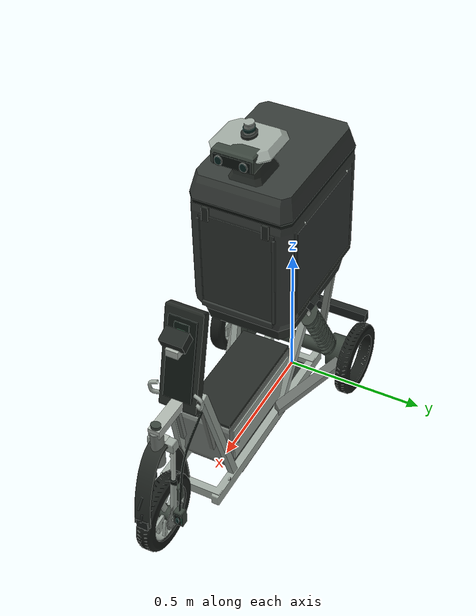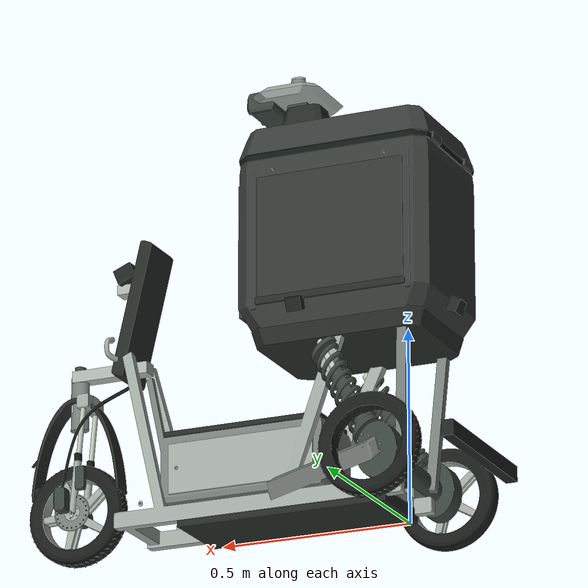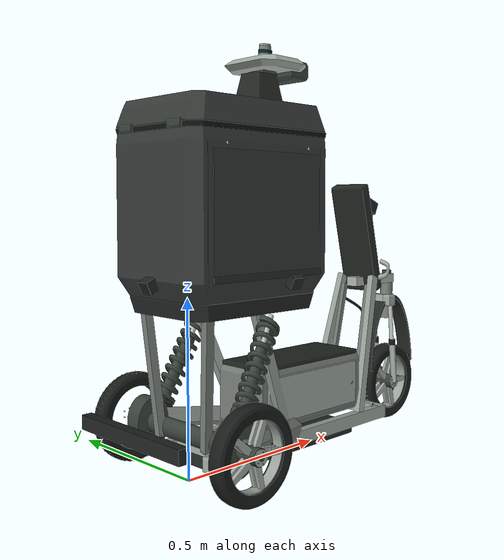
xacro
<robot xmlns:xacro="http://www.ros.org/wiki/xacro" name="bglx_prototype_proxy">
  <xacro:arg name="controllers_file" default="$(find etrike_description)/config/controllers.yaml" />
  <material name="concept_mount">
    <color rgba="0.22 0.26 0.23 1" />
  </material>
  <link name="base_link">
    <inertial>
      <origin rpy="0 0 0" xyz="0.342636986325 0 0.307739726" />
      <mass value="28.52258852258852" />
      <inertia ixx="2.2081942096410256" ixy="0.0" ixz="0.6020864067399267" iyy="3.159021024542125" iyz="0.0" izz="1.215067108175824" />
    </inertial>
    <collision name="lower_chassis">
      <origin rpy="0 0 0" xyz="0.36 0 0.0775" />
      <geometry>
        <box size="0.78 0.228 0.095" />
      </geometry>
    </collision>
    <collision name="battery">
      <origin rpy="0 0 0" xyz="0.4125 0 0.19" />
      <geometry>
        <box size="0.435 0.192 0.2" />
      </geometry>
    </collision>
    <collision name="cargo_shell">
      <origin rpy="0 0 0" xyz="0.135 0 0.737" />
      <geometry>
        <box size="0.525 0.366 0.58" />
      </geometry>
    </collision>
    <collision name="cargo_support">
      <origin rpy="0 0 0" xyz="0.0975 0 0.295" />
      <geometry>
        <box size="0.27 0.282 0.32" />
      </geometry>
    </collision>
    <collision name="display">
      <origin rpy="0 0 0" xyz="0.7275 0 0.64" />
      <geometry>
        <box size="0.126105200134 0.135 0.375982395822" />
      </geometry>
    </collision>
    <collision name="head_bearing_support">
      <origin rpy="0 0 0" xyz="0.81 0 0.495" />
      <geometry>
        <box size="0.21 0.039 0.03" />
      </geometry>
    </collision>
    <visual name="head_bearing_support">
      <origin rpy="0 0 0" xyz="0.81 0 0.495" />
      <geometry>
        <box size="0.21 0.039 0.03" />
      </geometry>
      <material name="bglx_aluminum">
        <color rgba="0.68 0.71 0.68 1.0" />
      </material>
    </visual>
    <collision name="sensor_mast">
      <origin rpy="0 0 0" xyz="0.315 0 1.098" />
      <geometry>
        <box size="0.1725 0.204 0.142" />
      </geometry>
    </collision>
    <collision name="terrain_camera_mount">
      <origin rpy="0 0 0" xyz="0.75375 0 0.71" />
      <geometry>
        <box size="0.07125 0.042 0.025" />
      </geometry>
    </collision>
    <visual name="terrain_camera_mount">
      <origin rpy="0 0 0" xyz="0.75375 0 0.71" />
      <geometry>
        <box size="0.07125 0.042 0.025" />
      </geometry>
      <material name="bglx_aluminum">
        <color rgba="0.68 0.71 0.68 1.0" />
      </material>
    </visual>
    <visual name="bglx_color_body_0">
      <origin rpy="0 0 0" xyz="0 0 -0.145" />
      <geometry>
        <mesh filename="package://etrike_description/meshes/concept_color/body_0.stl" scale="0.75 0.6 1" />
      </geometry>
      <material name="bglx_color_body_0">
        <color rgba="0.627451 0.666667 0.635294 1.0" />
      </material>
    </visual>
    <visual name="bglx_color_body_1">
      <origin rpy="0 0 0" xyz="0 0 -0.145" />
      <geometry>
        <mesh filename="package://etrike_description/meshes/concept_color/body_1.stl" scale="0.75 0.6 1" />
      </geometry>
      <material name="bglx_color_body_1">
        <color rgba="0.466667 0.494118 0.470588 1.0" />
      </material>
    </visual>
    <visual name="bglx_color_body_2">
      <origin rpy="0 0 0" xyz="0 0 -0.145" />
      <geometry>
        <mesh filename="package://etrike_description/meshes/concept_color/body_2.stl" scale="0.75 0.6 1" />
      </geometry>
      <material name="bglx_color_body_2">
        <color rgba="0.737255 0.772549 0.737255 1.0" />
      </material>
    </visual>
    <visual name="bglx_color_body_3">
      <origin rpy="0 0 0" xyz="0 0 -0.145" />
      <geometry>
        <mesh filename="package://etrike_description/meshes/concept_color/body_3.stl" scale="0.75 0.6 1" />
      </geometry>
      <material name="bglx_color_body_3">
        <color rgba="0.223529 0.262745 0.231373 1.0" />
      </material>
    </visual>
    <visual name="bglx_color_body_4">
      <origin rpy="0 0 0" xyz="0 0 -0.145" />
      <geometry>
        <mesh filename="package://etrike_description/meshes/concept_color/body_4.stl" scale="0.75 0.6 1" />
      </geometry>
      <material name="bglx_color_body_4">
        <color rgba="0.141176 0.160784 0.145098 1.0" />
      </material>
    </visual>
    <visual name="bglx_color_body_5">
      <origin rpy="0 0 0" xyz="0 0 -0.145" />
      <geometry>
        <mesh filename="package://etrike_description/meshes/concept_color/body_5.stl" scale="0.75 0.6 1" />
      </geometry>
      <material name="bglx_color_body_5">
        <color rgba="0.062745 0.090196 0.07451 1.0" />
      </material>
    </visual>
    <visual name="bglx_color_body_6">
      <origin rpy="0 0 0" xyz="0 0 -0.145" />
      <geometry>
        <mesh filename="package://etrike_description/meshes/concept_color/body_6.stl" scale="0.75 0.6 1" />
      </geometry>
      <material name="bglx_color_body_6">
        <color rgba="0.043137 0.094118 0.066667 1.0" />
      </material>
    </visual>
    <visual name="bglx_color_body_7">
      <origin rpy="0 0 0" xyz="0 0 -0.145" />
      <geometry>
        <mesh filename="package://etrike_description/meshes/concept_color/body_7.stl" scale="0.75 0.6 1" />
      </geometry>
      <material name="bglx_color_body_7">
        <color rgba="0.329412 0.72549 0.482353 1.0" />
      </material>
    </visual>
    <visual name="bglx_color_body_8">
      <origin rpy="0 0 0" xyz="0 0 -0.145" />
      <geometry>
        <mesh filename="package://etrike_description/meshes/concept_color/body_8.stl" scale="0.75 0.6 1" />
      </geometry>
      <material name="bglx_color_body_8">
        <color rgba="0.207843 0.227451 0.215686 1.0" />
      </material>
    </visual>
    <visual name="bglx_color_body_9">
      <origin rpy="0 0 0" xyz="0 0 -0.145" />
      <geometry>
        <mesh filename="package://etrike_description/meshes/concept_color/body_9.stl" scale="0.75 0.6 1" />
      </geometry>
      <material name="bglx_color_body_9">
        <color rgba="0.188235 0.207843 0.196078 1.0" />
      </material>
    </visual>
    <visual name="bglx_color_body_10">
      <origin rpy="0 0 0" xyz="0 0 -0.145" />
      <geometry>
        <mesh filename="package://etrike_description/meshes/concept_color/body_10.stl" scale="0.75 0.6 1" />
      </geometry>
      <material name="bglx_color_body_10">
        <color rgba="0.031373 0.14902 0.133333 1.0" />
      </material>
    </visual>
    <visual name="prototype_rear_bumper">
      <origin xyz="-0.185 0 0.16" rpy="0 0 0" />
      <geometry>
        <box size="0.03 0.42 0.04" />
      </geometry>
      <material name="prototype_bumper">
        <color rgba="0.12 0.14 0.13 1" />
      </material>
    </visual>
    <collision name="prototype_rear_bumper">
      <origin xyz="-0.185 0 0.16" rpy="0 0 0" />
      <geometry>
        <box size="0.03 0.42 0.04" />
      </geometry>
    </collision>
  </link>
  <link name="base_footprint" />
  <joint name="base_footprint_joint" type="fixed">
    <parent link="base_link" />
    <child link="base_footprint" />
    <origin rpy="0 0 0" xyz="0 0 0" />
  </joint>
  <link name="caster_mount">
    <inertial>
      <origin rpy="0 0 0" xyz="-0.01 0 -0.19" />
      <mass value="2.93040293040293" />
      <inertia ixx="0.04358776576958395" ixy="0.0" ixz="0.0" iyy="0.04237362637362638" iyz="0.0" izz="0.0029333091151272995" />
    </inertial>
    <collision name="fork_-1">
      <origin rpy="0 0 0" xyz="-0.01 -0.0359272727273 -0.215" />
      <geometry>
        <box size="0.036521472162 0.0222181818182 0.303654915607" />
      </geometry>
    </collision>
    <collision name="fork_1">
      <origin rpy="0 0 0" xyz="-0.01 0.0359272727273 -0.215" />
      <geometry>
        <box size="0.036521472162 0.0222181818182 0.303654915607" />
      </geometry>
    </collision>
    <collision name="fork_crown">
      <origin rpy="0 0 0" xyz="-0.028 0 -0.075" />
      <geometry>
        <box size="0.036 0.0945454545455 0.04" />
      </geometry>
    </collision>
    <collision name="offset_fork_crown">
      <origin rpy="0 0 0" xyz="-0.014 0 -0.075" />
      <geometry>
        <box size="0.06 0.0330909090909 0.038" />
      </geometry>
    </collision>
    <visual name="offset_fork_crown">
      <origin rpy="0 0 0" xyz="-0.014 0 -0.075" />
      <geometry>
        <box size="0.06 0.0330909090909 0.038" />
      </geometry>
      <material name="bglx_aluminum">
        <color rgba="0.68 0.71 0.68 1.0" />
      </material>
    </visual>
    <collision name="mudguard_0">
      <origin rpy="0 0 0" xyz="0.1125601746 0 -0.2610106046" />
      <geometry>
        <box size="0.0200071145597 0.0567272727273 0.100284248032" />
      </geometry>
    </collision>
    <collision name="mudguard_1">
      <origin rpy="0 0 0" xyz="0.09465673788 0 -0.1806073827" />
      <geometry>
        <box size="0.0298798984836 0.0567272727273 0.0895036939888" />
      </geometry>
    </collision>
    <collision name="mudguard_2">
      <origin rpy="0 0 0" xyz="0.06784714376 0 -0.117553477" />
      <geometry>
        <box size="0.0369413127682 0.0567272727273 0.0703018272441" />
      </geometry>
    </collision>
    <collision name="mudguard_3">
      <origin rpy="0 0 0" xyz="0.034653880028 0 -0.07778156615" />
      <geometry>
        <box size="0.0405269560267 0.0567272727273 0.0444853321629" />
      </geometry>
    </collision>
    <collision name="mudguard_4">
      <origin rpy="0 0 0" xyz="-0.0017999325008 0 -0.06503374937" />
      <geometry>
        <box size="0.0404914514853 0.0567272727273 0.0175131432219" />
      </geometry>
    </collision>
    <collision name="mudguard_5">
      <origin rpy="0 0 0" xyz="-0.038084391188 0 -0.08050945591" />
      <geometry>
        <box size="0.0403425608002 0.0567272727273 0.0472271916016" />
      </geometry>
    </collision>
    <collision name="mudguard_6">
      <origin rpy="0 0 0" xyz="-0.07078552776 0 -0.1227525921" />
      <geometry>
        <box size="0.0363978790767 0.0567272727273 0.0724976809436" />
      </geometry>
    </collision>
    <collision name="mudguard_7">
      <origin rpy="0 0 0" xyz="-0.09682652508 0 -0.1877885437" />
      <geometry>
        <box size="0.0290285574576 0.0567272727273 0.0909469362795" />
      </geometry>
    </collision>
    <collision name="mudguard_8">
      <origin rpy="0 0 0" xyz="-0.11375721188 0 -0.2694981432" />
      <geometry>
        <box size="0.0189279680216 0.0567272727273 0.100839085696" />
      </geometry>
    </collision>
    <collision name="axle_sensor">
      <origin rpy="0 0 0" xyz="0.014 0.0685454545455 -0.34" />
      <geometry>
        <box size="0.032 0.0354545454545 0.065" />
      </geometry>
    </collision>
    <visual name="bglx_color_steering_0">
      <origin rpy="0 0 0" xyz="-0.028 0 0" />
      <geometry>
        <mesh filename="package://etrike_description/meshes/concept_color/steering_0.stl" scale="0.4 0.472727272727 1" />
      </geometry>
      <material name="bglx_color_steering_0">
        <color rgba="0.627451 0.666667 0.635294 1.0" />
      </material>
    </visual>
    <visual name="bglx_color_steering_1">
      <origin rpy="0 0 0" xyz="-0.028 0 0" />
      <geometry>
        <mesh filename="package://etrike_description/meshes/concept_color/steering_1.stl" scale="0.4 0.472727272727 1" />
      </geometry>
      <material name="bglx_color_steering_1">
        <color rgba="0.223529 0.262745 0.231373 1.0" />
      </material>
    </visual>
    <visual name="bglx_color_steering_2">
      <origin rpy="0 0 0" xyz="-0.028 0 0" />
      <geometry>
        <mesh filename="package://etrike_description/meshes/concept_color/steering_2.stl" scale="0.4 0.472727272727 1" />
      </geometry>
      <material name="bglx_color_steering_2">
        <color rgba="0.737255 0.772549 0.737255 1.0" />
      </material>
    </visual>
    <visual name="bglx_color_steering_3">
      <origin rpy="0 0 0" xyz="-0.028 0 0" />
      <geometry>
        <mesh filename="package://etrike_description/meshes/concept_color/steering_3.stl" scale="0.4 0.472727272727 1" />
      </geometry>
      <material name="bglx_color_steering_3">
        <color rgba="0.062745 0.090196 0.07451 1.0" />
      </material>
    </visual>
    <visual name="bglx_color_steering_4">
      <origin rpy="0 0 0" xyz="-0.028 0 0" />
      <geometry>
        <mesh filename="package://etrike_description/meshes/concept_color/steering_4.stl" scale="0.4 0.472727272727 1" />
      </geometry>
      <material name="bglx_color_steering_4">
        <color rgba="0.141176 0.160784 0.145098 1.0" />
      </material>
    </visual>
    <visual name="bglx_color_steering_5">
      <origin rpy="0 0 0" xyz="-0.028 0 0" />
      <geometry>
        <mesh filename="package://etrike_description/meshes/concept_color/steering_5.stl" scale="0.4 0.472727272727 1" />
      </geometry>
      <material name="bglx_color_steering_5">
        <color rgba="0.031373 0.14902 0.133333 1.0" />
      </material>
    </visual>
    <visual name="bglx_color_steering_6">
      <origin rpy="0 0 0" xyz="-0.028 0 0" />
      <geometry>
        <mesh filename="package://etrike_description/meshes/concept_color/steering_6.stl" scale="0.4 0.472727272727 1" />
      </geometry>
      <material name="bglx_color_steering_6">
        <color rgba="0.203922 0.47451 0.352941 1.0" />
      </material>
    </visual>
    <visual name="clean_front_bracket_0">
      <origin xyz="0.118 0 -0.205" rpy="0 2.356194490192345 0" />
      <geometry>
        <cylinder radius="0.0036" length="0.03959797974644666" />
      </geometry>
      <material name="clean_sensor_bracket">
        <color rgba="0.12 0.14 0.13 1" />
      </material>
    </visual>
    <collision name="clean_front_bracket_0">
      <origin xyz="0.118 0 -0.205" rpy="0 2.356194490192345 0" />
      <geometry>
        <cylinder radius="0.0036" length="0.03959797974644666" />
      </geometry>
    </collision>
    <visual name="clean_front_bracket_1">
      <origin xyz="0.1214 0 -0.27" rpy="0 2.790147859586242 0" />
      <geometry>
        <cylinder radius="0.0036" length="0.02556247249387273" />
      </geometry>
      <material name="clean_sensor_bracket">
        <color rgba="0.12 0.14 0.13 1" />
      </material>
    </visual>
    <collision name="clean_front_bracket_1">
      <origin xyz="0.1214 0 -0.27" rpy="0 2.790147859586242 0" />
      <geometry>
        <cylinder radius="0.0036" length="0.02556247249387273" />
      </geometry>
    </collision>
  </link>
  <joint name="steering_joint" type="revolute">
    <parent link="base_link" />
    <child link="caster_mount" />
    <origin rpy="0 0 0" xyz="0.9 0 0.495" />
    <axis xyz="0 0 1" />
    <limit effort="80" lower="-1.0471975511965976" upper="1.0471975511965976" velocity="1.047" />
    <dynamics damping=".4" friction=".02" />
  </joint>
  <link name="front_wheel">
    <inertial>
      <origin rpy="0 0 0" xyz="0 0 0" />
      <mass value="1.9536019536019535" />
      <inertia ixx="0.008777856486947393" ixy="0.0" ixz="0.0" iyy="0.016507936507936506" iyz="0.0" izz="0.008777856486947393" />
    </inertial>
    <collision name="front_wheel_contact">
      <origin rpy="1.570796327 0 0" xyz="0 0 0" />
      <geometry>
        <cylinder length="0.08036363636363637" radius="0.13" />
      </geometry>
    </collision>
    <visual name="bglx_color_front_wheel_0">
      <origin rpy="0 0 0" xyz="0 0 0" />
      <geometry>
        <mesh filename="package://etrike_description/meshes/concept_color/front_wheel_0.stl" scale="0.472727272727 0.472727272727 0.472727272727" />
      </geometry>
      <material name="bglx_color_front_wheel_0">
        <color rgba="0.094118 0.109804 0.098039 1.0" />
      </material>
    </visual>
    <visual name="bglx_color_front_wheel_1">
      <origin rpy="0 0 0" xyz="0 0 0" />
      <geometry>
        <mesh filename="package://etrike_description/meshes/concept_color/front_wheel_1.stl" scale="0.472727272727 0.472727272727 0.472727272727" />
      </geometry>
      <material name="bglx_color_front_wheel_1">
        <color rgba="0.627451 0.666667 0.635294 1.0" />
      </material>
    </visual>
    <visual name="bglx_color_front_wheel_2">
      <origin rpy="0 0 0" xyz="0 0 0" />
      <geometry>
        <mesh filename="package://etrike_description/meshes/concept_color/front_wheel_2.stl" scale="0.472727272727 0.472727272727 0.472727272727" />
      </geometry>
      <material name="bglx_color_front_wheel_2">
        <color rgba="0.223529 0.262745 0.231373 1.0" />
      </material>
    </visual>
    <visual name="bglx_color_front_wheel_3">
      <origin rpy="0 0 0" xyz="0 0 0" />
      <geometry>
        <mesh filename="package://etrike_description/meshes/concept_color/front_wheel_3.stl" scale="0.472727272727 0.472727272727 0.472727272727" />
      </geometry>
      <material name="bglx_color_front_wheel_3">
        <color rgba="0.737255 0.772549 0.737255 1.0" />
      </material>
    </visual>
    <visual name="bglx_color_front_wheel_4">
      <origin rpy="0 0 0" xyz="0 0 0" />
      <geometry>
        <mesh filename="package://etrike_description/meshes/concept_color/front_wheel_4.stl" scale="0.472727272727 0.472727272727 0.472727272727" />
      </geometry>
      <material name="bglx_color_front_wheel_4">
        <color rgba="0.062745 0.082353 0.066667 1.0" />
      </material>
    </visual>
    <visual name="bglx_color_front_wheel_5">
      <origin rpy="0 0 0" xyz="0 0 0" />
      <geometry>
        <mesh filename="package://etrike_description/meshes/concept_color/front_wheel_5.stl" scale="0.472727272727 0.472727272727 0.472727272727" />
      </geometry>
      <material name="bglx_color_front_wheel_5">
        <color rgba="0.466667 0.494118 0.470588 1.0" />
      </material>
    </visual>
    <visual name="bglx_color_front_wheel_6">
      <origin rpy="0 0 0" xyz="0 0 0" />
      <geometry>
        <mesh filename="package://etrike_description/meshes/concept_color/front_wheel_6.stl" scale="0.472727272727 0.472727272727 0.472727272727" />
      </geometry>
      <material name="bglx_color_front_wheel_6">
        <color rgba="0.062745 0.090196 0.07451 1.0" />
      </material>
    </visual>
  </link>
  <joint name="front_wheel_joint" type="continuous">
    <parent link="caster_mount" />
    <child link="front_wheel" />
    <origin rpy="0 0 0" xyz="0 0 -0.365" />
    <axis xyz="0 1 0" />
    <limit effort="80" velocity="25" />
    <dynamics damping=".02" friction=".005" />
  </joint>
  <gazebo reference="front_wheel">
    <mu1>0.85</mu1>
    <mu2>0.85</mu2>
    <kp>1000000</kp>
    <kd>100</kd>
    <minDepth>0.001</minDepth>
    <maxVel>0.1</maxVel>
  </gazebo>
  <link name="rear_left_wheel">
    <inertial>
      <origin rpy="0 0 0" xyz="0 0 0" />
      <mass value="3.1257631257631258" />
      <inertia ixx="0.013848112291748652" ixy="0.0" ixz="0.0" iyy="0.02641269841269841" iyz="0.0" izz="0.013848112291748652" />
    </inertial>
    <collision name="rear_left_wheel_contact">
      <origin rpy="1.570796327 0 0" xyz="0 0 0" />
      <geometry>
        <cylinder length="0.07327272727272727" radius="0.13" />
      </geometry>
    </collision>
    <visual name="bglx_color_rear_left_wheel_0">
      <origin rpy="0 0 0" xyz="0 0 0" />
      <geometry>
        <mesh filename="package://etrike_description/meshes/concept_color/rear_left_wheel_0.stl" scale="0.472727272727 0.472727272727 0.472727272727" />
      </geometry>
      <material name="bglx_color_rear_left_wheel_0">
        <color rgba="0.094118 0.109804 0.098039 1.0" />
      </material>
    </visual>
    <visual name="bglx_color_rear_left_wheel_1">
      <origin rpy="0 0 0" xyz="0 0 0" />
      <geometry>
        <mesh filename="package://etrike_description/meshes/concept_color/rear_left_wheel_1.stl" scale="0.472727272727 0.472727272727 0.472727272727" />
      </geometry>
      <material name="bglx_color_rear_left_wheel_1">
        <color rgba="0.627451 0.666667 0.635294 1.0" />
      </material>
    </visual>
    <visual name="bglx_color_rear_left_wheel_2">
      <origin rpy="0 0 0" xyz="0 0 0" />
      <geometry>
        <mesh filename="package://etrike_description/meshes/concept_color/rear_left_wheel_2.stl" scale="0.472727272727 0.472727272727 0.472727272727" />
      </geometry>
      <material name="bglx_color_rear_left_wheel_2">
        <color rgba="0.223529 0.262745 0.231373 1.0" />
      </material>
    </visual>
    <visual name="bglx_color_rear_left_wheel_3">
      <origin rpy="0 0 0" xyz="0 0 0" />
      <geometry>
        <mesh filename="package://etrike_description/meshes/concept_color/rear_left_wheel_3.stl" scale="0.472727272727 0.472727272727 0.472727272727" />
      </geometry>
      <material name="bglx_color_rear_left_wheel_3">
        <color rgba="0.737255 0.772549 0.737255 1.0" />
      </material>
    </visual>
    <visual name="bglx_color_rear_left_wheel_4">
      <origin rpy="0 0 0" xyz="0 0 0" />
      <geometry>
        <mesh filename="package://etrike_description/meshes/concept_color/rear_left_wheel_4.stl" scale="0.472727272727 0.472727272727 0.472727272727" />
      </geometry>
      <material name="bglx_color_rear_left_wheel_4">
        <color rgba="0.062745 0.082353 0.066667 1.0" />
      </material>
    </visual>
  </link>
  <joint name="rear_left_wheel_joint" type="continuous">
    <parent link="base_link" />
    <child link="rear_left_wheel" />
    <origin rpy="0 0 0" xyz="0 0.248363636364 0.13" />
    <axis xyz="0 1 0" />
    <limit effort="80" velocity="25" />
    <dynamics damping=".02" friction=".005" />
  </joint>
  <gazebo reference="rear_left_wheel">
    <mu1>0.85</mu1>
    <mu2>0.85</mu2>
    <kp>1000000</kp>
    <kd>100</kd>
    <minDepth>0.001</minDepth>
    <maxVel>0.1</maxVel>
  </gazebo>
  <link name="rear_right_wheel">
    <inertial>
      <origin rpy="0 0 0" xyz="0 0 0" />
      <mass value="3.1257631257631258" />
      <inertia ixx="0.013848112291748652" ixy="0.0" ixz="0.0" iyy="0.02641269841269841" iyz="0.0" izz="0.013848112291748652" />
    </inertial>
    <collision name="rear_right_wheel_contact">
      <origin rpy="1.570796327 0 0" xyz="0 0 0" />
      <geometry>
        <cylinder length="0.07327272727272727" radius="0.13" />
      </geometry>
    </collision>
    <visual name="bglx_color_rear_right_wheel_0">
      <origin rpy="0 0 0" xyz="0 0 0" />
      <geometry>
        <mesh filename="package://etrike_description/meshes/concept_color/rear_right_wheel_0.stl" scale="0.472727272727 0.472727272727 0.472727272727" />
      </geometry>
      <material name="bglx_color_rear_right_wheel_0">
        <color rgba="0.094118 0.109804 0.098039 1.0" />
      </material>
    </visual>
    <visual name="bglx_color_rear_right_wheel_1">
      <origin rpy="0 0 0" xyz="0 0 0" />
      <geometry>
        <mesh filename="package://etrike_description/meshes/concept_color/rear_right_wheel_1.stl" scale="0.472727272727 0.472727272727 0.472727272727" />
      </geometry>
      <material name="bglx_color_rear_right_wheel_1">
        <color rgba="0.627451 0.666667 0.635294 1.0" />
      </material>
    </visual>
    <visual name="bglx_color_rear_right_wheel_2">
      <origin rpy="0 0 0" xyz="0 0 0" />
      <geometry>
        <mesh filename="package://etrike_description/meshes/concept_color/rear_right_wheel_2.stl" scale="0.472727272727 0.472727272727 0.472727272727" />
      </geometry>
      <material name="bglx_color_rear_right_wheel_2">
        <color rgba="0.223529 0.262745 0.231373 1.0" />
      </material>
    </visual>
    <visual name="bglx_color_rear_right_wheel_3">
      <origin rpy="0 0 0" xyz="0 0 0" />
      <geometry>
        <mesh filename="package://etrike_description/meshes/concept_color/rear_right_wheel_3.stl" scale="0.472727272727 0.472727272727 0.472727272727" />
      </geometry>
      <material name="bglx_color_rear_right_wheel_3">
        <color rgba="0.737255 0.772549 0.737255 1.0" />
      </material>
    </visual>
    <visual name="bglx_color_rear_right_wheel_4">
      <origin rpy="0 0 0" xyz="0 0 0" />
      <geometry>
        <mesh filename="package://etrike_description/meshes/concept_color/rear_right_wheel_4.stl" scale="0.472727272727 0.472727272727 0.472727272727" />
      </geometry>
      <material name="bglx_color_rear_right_wheel_4">
        <color rgba="0.062745 0.082353 0.066667 1.0" />
      </material>
    </visual>
  </link>
  <joint name="rear_right_wheel_joint" type="continuous">
    <parent link="base_link" />
    <child link="rear_right_wheel" />
    <origin rpy="0 0 0" xyz="0 -0.248363636364 0.13" />
    <axis xyz="0 1 0" />
    <limit effort="80" velocity="25" />
    <dynamics damping=".02" friction=".005" />
  </joint>
  <gazebo reference="rear_right_wheel">
    <mu1>0.85</mu1>
    <mu2>0.85</mu2>
    <kp>1000000</kp>
    <kd>100</kd>
    <minDepth>0.001</minDepth>
    <maxVel>0.1</maxVel>
  </gazebo>
  <link name="lidar_sensor">
    <inertial>
      <origin rpy="0 0 0" xyz="0 0 0" />
      <mass value="0.04884004884004884" />
      <inertia ixx="9.768009768009769e-06" ixy="0.0" ixz="0.0" iyy="9.768009768009769e-06" iyz="0.0" izz="9.768009768009769e-06" />
    </inertial>
  </link>
  <joint name="lidar_sensor_joint" type="fixed">
    <parent link="base_link" />
    <child link="lidar_sensor" />
    <origin rpy="0 0 0" xyz="0.294 0 1.192" />
  </joint>
  <link name="camera_front_main">
    <inertial>
      <origin rpy="0 0 0" xyz="0 0 0" />
      <mass value="0.04884004884004884" />
      <inertia ixx="9.768009768009769e-06" ixy="0.0" ixz="0.0" iyy="9.768009768009769e-06" iyz="0.0" izz="9.768009768009769e-06" />
    </inertial>
  </link>
  <joint name="camera_front_main_joint" type="fixed">
    <parent link="base_link" />
    <child link="camera_front_main" />
    <origin rpy="0 0 0" xyz="0.41325 0.0408 1.138" />
  </joint>
  <link name="depth_camera">
    <inertial>
      <origin rpy="0 0 0" xyz="0 0 0" />
      <mass value="0.04884004884004884" />
      <inertia ixx="9.768009768009769e-06" ixy="0.0" ixz="0.0" iyy="9.768009768009769e-06" iyz="0.0" izz="9.768009768009769e-06" />
    </inertial>
    <collision name="depth_camera_housing">
      <origin rpy="0 0 0" xyz="-0.028 0 0" />
      <geometry>
        <box size="0.05 0.08 0.04" />
      </geometry>
    </collision>
    <visual name="depth_camera_housing">
      <origin rpy="0 0 0" xyz="-0.028 0 0" />
      <geometry>
        <box size="0.05 0.08 0.04" />
      </geometry>
      <material name="bglx_sensor">
        <color rgba="0.12 0.14 0.13 1.0" />
      </material>
    </visual>
  </link>
  <joint name="depth_camera_joint" type="fixed">
    <parent link="base_link" />
    <child link="depth_camera" />
    <origin rpy="0 0.4 0" xyz="0.7875 0 0.735" />
  </joint>
  <link name="front_lidar_link">
    <inertial>
      <origin rpy="0 0 0" xyz="0 0 0" />
      <mass value="0.04884004884004884" />
      <inertia ixx="9.768009768009769e-06" ixy="0.0" ixz="0.0" iyy="9.768009768009769e-06" iyz="0.0" izz="9.768009768009769e-06" />
    </inertial>
    <collision name="front_lidar_link_housing">
      <origin rpy="0 0 0" xyz="-0.018 0 0" />
      <geometry>
        <box size="0.03 0.04 0.035" />
      </geometry>
    </collision>
    <visual name="front_lidar_link_housing">
      <origin rpy="0 0 0" xyz="-0.018 0 0" />
      <geometry>
        <box size="0.03 0.04 0.035" />
      </geometry>
      <material name="bglx_sensor">
        <color rgba="0.12 0.14 0.13 1.0" />
      </material>
    </visual>
  </link>
  <joint name="front_lidar_link_joint" type="fixed">
    <parent link="caster_mount" />
    <child link="front_lidar_link" />
    <origin rpy="0 0 0" xyz="0.125 0 -0.3" />
  </joint>
  <link name="left_depth_link">
    <inertial>
      <origin rpy="0 0 0" xyz="0 0 0" />
      <mass value="0.04884004884004884" />
      <inertia ixx="9.768009768009769e-06" ixy="0.0" ixz="0.0" iyy="9.768009768009769e-06" iyz="0.0" izz="9.768009768009769e-06" />
    </inertial>
    <collision name="left_depth_link_housing">
      <origin rpy="0 0 0" xyz="-0.018 0 0" />
      <geometry>
        <box size="0.03 0.04 0.035" />
      </geometry>
    </collision>
    <visual name="left_depth_link_housing">
      <origin rpy="0 0 0" xyz="-0.018 0 0" />
      <geometry>
        <box size="0.03 0.04 0.035" />
      </geometry>
      <material name="bglx_sensor">
        <color rgba="0.12 0.14 0.13 1.0" />
      </material>
    </visual>
  </link>
  <joint name="left_depth_link_joint" type="fixed">
    <parent link="base_link" />
    <child link="left_depth_link" />
    <origin rpy="0 0.45 1.5707963267948966" xyz="0.225 0.1962 0.535" />
  </joint>
  <link name="right_depth_link">
    <inertial>
      <origin rpy="0 0 0" xyz="0 0 0" />
      <mass value="0.04884004884004884" />
      <inertia ixx="9.768009768009769e-06" ixy="0.0" ixz="0.0" iyy="9.768009768009769e-06" iyz="0.0" izz="9.768009768009769e-06" />
    </inertial>
    <collision name="right_depth_link_housing">
      <origin rpy="0 0 0" xyz="-0.018 0 0" />
      <geometry>
        <box size="0.03 0.04 0.035" />
      </geometry>
    </collision>
    <visual name="right_depth_link_housing">
      <origin rpy="0 0 0" xyz="-0.018 0 0" />
      <geometry>
        <box size="0.03 0.04 0.035" />
      </geometry>
      <material name="bglx_sensor">
        <color rgba="0.12 0.14 0.13 1.0" />
      </material>
    </visual>
  </link>
  <joint name="right_depth_link_joint" type="fixed">
    <parent link="base_link" />
    <child link="right_depth_link" />
    <origin rpy="0 0.45 -1.5707963267948966" xyz="0.225 -0.1962 0.535" />
  </joint>
  <link name="rear_depth_link">
    <inertial>
      <origin rpy="0 0 0" xyz="0 0 0" />
      <mass value="0.04884004884004884" />
      <inertia ixx="9.768009768009769e-06" ixy="0.0" ixz="0.0" iyy="9.768009768009769e-06" iyz="0.0" izz="9.768009768009769e-06" />
    </inertial>
    <collision name="rear_depth_link_housing">
      <origin rpy="0 0 0" xyz="-0.018 0 0" />
      <geometry>
        <box size="0.03 0.04 0.035" />
      </geometry>
    </collision>
    <visual name="rear_depth_link_housing">
      <origin rpy="0 0 0" xyz="-0.018 0 0" />
      <geometry>
        <box size="0.03 0.04 0.035" />
      </geometry>
      <material name="bglx_sensor">
        <color rgba="0.12 0.14 0.13 1.0" />
      </material>
    </visual>
  </link>
  <joint name="rear_depth_link_joint" type="fixed">
    <parent link="base_link" />
    <child link="rear_depth_link" />
    <origin rpy="0 0.45 3.141592653589793" xyz="-0.144 0 0.535" />
  </joint>
  <link name="depth_camera_optical" />
  <joint name="depth_camera_optical_joint" type="fixed">
    <parent link="depth_camera" />
    <child link="depth_camera_optical" />
    <origin rpy="-1.570796327 0 -1.570796327" xyz="0 0 0" />
  </joint>
  <link name="camera_front_main_optical" />
  <joint name="camera_front_main_optical_joint" type="fixed">
    <parent link="camera_front_main" />
    <child link="camera_front_main_optical" />
    <origin rpy="-1.570796327 0 -1.570796327" xyz="0 0 0" />
  </joint>
  <gazebo reference="lidar_sensor">
    <sensor name="lidar" type="ray">
      <always_on>true</always_on>
      <visualize>true</visualize>
      <update_rate>10</update_rate>
      <ray>
        <scan>
          <horizontal>
            <samples>720</samples>
            <resolution>1</resolution>
            <min_angle>-3.14159</min_angle>
            <max_angle>3.14159</max_angle>
          </horizontal>
        </scan>
        <range>
          <min>0.45</min>
          <max>30.0</max>
          <resolution>0.01</resolution>
        </range>
        <noise>
          <type>gaussian</type>
          <mean>0.0</mean>
          <stddev>0.01</stddev>
        </noise>
      </ray>
      <plugin filename="libgazebo_ros_ray_sensor.so" name="scan">
        <ros>
          <namespace>/etrike</namespace>
          <remapping>~/out:=scan</remapping>
        </ros>
        <output_type>sensor_msgs/LaserScan</output_type>
        <frame_name>lidar_sensor</frame_name>
      </plugin>
    </sensor>
  </gazebo>
  <gazebo reference="camera_front_main">
    <sensor name="camera_front" type="camera">
      <always_on>true</always_on>
      <visualize>false</visualize>
      <update_rate>30</update_rate>
      <camera name="front">
        <horizontal_fov>1.5708</horizontal_fov>
        <image>
          <width>800</width>
          <height>600</height>
          <format>R8G8B8</format>
        </image>
        <clip>
          <near>0.1</near>
          <far>100</far>
        </clip>
        <noise>
          <type>gaussian</type>
          <mean>0.0</mean>
          <stddev>0.005</stddev>
        </noise>
      </camera>
      <plugin filename="libgazebo_ros_camera.so" name="camera_front_controller">
        <ros>
          <namespace>/etrike</namespace>
          <remapping>image_raw:=/etrike/front/image_raw</remapping>
          <remapping>camera_info:=/etrike/front/camera_info</remapping>
        </ros>
        <camera_name>front</camera_name>
        <frame_name>camera_front_main_optical</frame_name>
      </plugin>
    </sensor>
  </gazebo>
  <gazebo reference="base_link">
    <sensor name="imu_sensor" type="imu">
      <always_on>true</always_on>
      <update_rate>100</update_rate>
      <visualize>false</visualize>
      <imu>
        <angular_velocity>
          <x>
            <noise type="gaussian">
              <mean>0.0</mean>
              <stddev>0.0002</stddev>
            </noise>
          </x>
          <y>
            <noise type="gaussian">
              <mean>0.0</mean>
              <stddev>0.0002</stddev>
            </noise>
          </y>
          <z>
            <noise type="gaussian">
              <mean>0.0</mean>
              <stddev>0.0002</stddev>
            </noise>
          </z>
        </angular_velocity>
        <linear_acceleration>
          <x>
            <noise type="gaussian">
              <mean>0.0</mean>
              <stddev>0.017</stddev>
            </noise>
          </x>
          <y>
            <noise type="gaussian">
              <mean>0.0</mean>
              <stddev>0.017</stddev>
            </noise>
          </y>
          <z>
            <noise type="gaussian">
              <mean>0.0</mean>
              <stddev>0.017</stddev>
            </noise>
          </z>
        </linear_acceleration>
      </imu>
      <plugin filename="libgazebo_ros_imu_sensor.so" name="imu_plugin">
        <ros>
          <namespace>/etrike</namespace>
          <remapping>~/out:=imu</remapping>
        </ros>
        <initial_orientation_as_reference>false</initial_orientation_as_reference>
        <frame_name>base_link</frame_name>
      </plugin>
    </sensor>
  </gazebo>
  <gazebo reference="depth_camera">
    <sensor name="front_depth_camera" type="depth">
      <always_on>true</always_on>
      <update_rate>15</update_rate>
      <visualize>true</visualize>
      <camera name="front_depth_camera">
        <horizontal_fov>1.047</horizontal_fov>
        <image>
          <width>640</width>
          <height>480</height>
          <format>R8G8B8</format>
        </image>
        <clip>
          <near>0.15</near>
          <far>6.0</far>
        </clip>
      </camera>
      <plugin name="front_depth_camera_controller" filename="libgazebo_ros_camera.so">
        <ros>
          <namespace>/etrike</namespace>
          <remapping>image_raw:=front_camera/image_raw</remapping>
          <remapping>camera_info:=front_camera/camera_info</remapping>
          <remapping>depth/image_raw:=front_camera/depth/image_raw</remapping>
          <remapping>depth/camera_info:=front_camera/depth/camera_info</remapping>
        </ros>
        <camera_name>front_camera</camera_name>
        <frame_name>depth_camera_optical</frame_name>
      </plugin>
    </sensor>
    <sensor name="front_depth" type="depth">
      <always_on>true</always_on>
      <update_rate>10</update_rate>
      <visualize>false</visualize>
      <camera name="front_terrain">
        <horizontal_fov>1.22173</horizontal_fov>
        <image>
          <width>320</width>
          <height>240</height>
          <format>R8G8B8</format>
        </image>
        <clip>
          <near>0.15</near>
          <far>4.0</far>
        </clip>
      </camera>
      <plugin filename="libgazebo_ros_camera.so" name="front_terrain_depth_controller">
        <ros>
          <namespace>/etrike</namespace>
          <remapping>image_raw:=/etrike/front_depth/image_raw</remapping>
          <remapping>camera_info:=/etrike/front_depth/camera_info</remapping>
          <remapping>depth/image_raw:=/etrike/front_depth/depth/image_raw</remapping>
          <remapping>depth/camera_info:=/etrike/front_depth/depth/camera_info</remapping>
          <remapping>points:=/etrike/front_depth/points</remapping>
        </ros>
        <camera_name>front_depth</camera_name>
        <frame_name>depth_camera_optical</frame_name>
        <pointCloudCutoff>0.15</pointCloudCutoff>
        <pointCloudCutoffMax>4.0</pointCloudCutoffMax>
      </plugin>
    </sensor>
    <sensor name="front_terrain_projection" type="camera">
      <always_on>true</always_on>
      <update_rate>10</update_rate>
      <visualize>true</visualize>
      <camera name="front_terrain">
        <horizontal_fov>1.22173</horizontal_fov>
        <image>
          <width>320</width>
          <height>240</height>
          <format>R8G8B8</format>
        </image>
        <clip>
          <near>0.15</near>
          <far>4.0</far>
        </clip>
      </camera>
    </sensor>
  </gazebo>
  <gazebo reference="front_lidar_link">
    <sensor name="front_lidar" type="ray">
      <always_on>true</always_on>
      <visualize>true</visualize>
      <update_rate>15</update_rate>
      <ray>
        <scan>
          <horizontal>
            <samples>360</samples>
            <resolution>1</resolution>
            <min_angle>-2.0944</min_angle>
            <max_angle>2.0944</max_angle>
          </horizontal>
        </scan>
        <range>
          <min>0.15</min>
          <max>5.0</max>
          <resolution>0.01</resolution>
        </range>
        <noise>
          <type>gaussian</type>
          <mean>0.0</mean>
          <stddev>0.01</stddev>
        </noise>
      </ray>
      <plugin filename="libgazebo_ros_ray_sensor.so" name="front_scan">
        <ros>
          <namespace>/etrike</namespace>
          <remapping>~/out:=front_scan_raw</remapping>
        </ros>
        <output_type>sensor_msgs/LaserScan</output_type>
        <frame_name>front_lidar_link</frame_name>
      </plugin>
    </sensor>
  </gazebo>
  <gazebo reference="left_depth_link">
    <material>Gazebo/Black</material>
    <sensor name="left_depth" type="ray">
      <always_on>true</always_on>
      <update_rate>15</update_rate>
      <visualize>false</visualize>
      <ray>
        <scan>
          <horizontal>
            <samples>15</samples>
            <resolution>1</resolution>
            <min_angle>-0.35</min_angle>
            <max_angle>0.35</max_angle>
          </horizontal>
          <vertical>
            <samples>5</samples>
            <resolution>1</resolution>
            <min_angle>-0.20</min_angle>
            <max_angle>0.20</max_angle>
          </vertical>
        </scan>
        <range>
          <min>0.05</min>
          <max>4.0</max>
          <resolution>0.01</resolution>
        </range>
      </ray>
      <plugin filename="libgazebo_ros_ray_sensor.so" name="left_depth_controller">
        <ros>
          <namespace>/etrike</namespace>
          <remapping>~/out:=left_depth/scan</remapping>
        </ros>
        <output_type>sensor_msgs/LaserScan</output_type>
        <frame_name>left_depth_link</frame_name>
      </plugin>
    </sensor>
  </gazebo>
  <gazebo reference="right_depth_link">
    <material>Gazebo/Black</material>
    <sensor name="right_depth" type="ray">
      <always_on>true</always_on>
      <update_rate>15</update_rate>
      <visualize>false</visualize>
      <ray>
        <scan>
          <horizontal>
            <samples>15</samples>
            <resolution>1</resolution>
            <min_angle>-0.35</min_angle>
            <max_angle>0.35</max_angle>
          </horizontal>
          <vertical>
            <samples>5</samples>
            <resolution>1</resolution>
            <min_angle>-0.20</min_angle>
            <max_angle>0.20</max_angle>
          </vertical>
        </scan>
        <range>
          <min>0.05</min>
          <max>4.0</max>
          <resolution>0.01</resolution>
        </range>
      </ray>
      <plugin filename="libgazebo_ros_ray_sensor.so" name="right_depth_controller">
        <ros>
          <namespace>/etrike</namespace>
          <remapping>~/out:=right_depth/scan</remapping>
        </ros>
        <output_type>sensor_msgs/LaserScan</output_type>
        <frame_name>right_depth_link</frame_name>
      </plugin>
    </sensor>
  </gazebo>
  <gazebo reference="rear_depth_link">
    <material>Gazebo/Black</material>
    <sensor name="rear_depth" type="ray">
      <always_on>true</always_on>
      <update_rate>15</update_rate>
      <visualize>false</visualize>
      <ray>
        <scan>
          <horizontal>
            <samples>15</samples>
            <resolution>1</resolution>
            <min_angle>-0.35</min_angle>
            <max_angle>0.35</max_angle>
          </horizontal>
          <vertical>
            <samples>5</samples>
            <resolution>1</resolution>
            <min_angle>-0.20</min_angle>
            <max_angle>0.20</max_angle>
          </vertical>
        </scan>
        <range>
          <min>0.05</min>
          <max>4.0</max>
          <resolution>0.01</resolution>
        </range>
      </ray>
      <plugin filename="libgazebo_ros_ray_sensor.so" name="rear_depth_controller">
        <ros>
          <namespace>/etrike</namespace>
          <remapping>~/out:=rear_depth/scan</remapping>
        </ros>
        <output_type>sensor_msgs/LaserScan</output_type>
        <frame_name>rear_depth_link</frame_name>
      </plugin>
    </sensor>
  </gazebo>
  <ros2_control name="GazeboSystem" type="system">
    <hardware>
      <plugin>gazebo_ros2_control/GazeboSystem</plugin>
    </hardware>
    <joint name="steering_joint">
      <command_interface name="position">
        <param name="min">-1.0471975511965976</param>
        <param name="max">1.0471975511965976</param>
      </command_interface>
      <state_interface name="position" />
      <state_interface name="velocity" />
    </joint>
    <joint name="rear_left_wheel_joint">
      <command_interface name="velocity">
        <param name="min">-25.0</param>
        <param name="max">25.0</param>
      </command_interface>
      <state_interface name="velocity" />
      <state_interface name="position" />
    </joint>
    <joint name="rear_right_wheel_joint">
      <command_interface name="velocity">
        <param name="min">-25.0</param>
        <param name="max">25.0</param>
      </command_interface>
      <state_interface name="velocity" />
      <state_interface name="position" />
    </joint>
    <joint name="front_wheel_joint">
      <state_interface name="position" />
      <state_interface name="velocity" />
    </joint>
  </ros2_control>
  <gazebo>
    <plugin filename="libgazebo_ros2_control.so" name="gazebo_ros2_control">
      <parameters>$(arg controllers_file)</parameters>
      <robot_param>robot_description</robot_param>
      <robot_param_node>robot_state_publisher</robot_param_node>
    </plugin>
  </gazebo>
  <gazebo reference="base_link" />
  <gazebo reference="caster_mount" />
  <gazebo reference="front_wheel" />
  <gazebo reference="rear_left_wheel" />
  <gazebo reference="rear_right_wheel" />
  <gazebo reference="depth_camera">
    <material>Gazebo/DarkGrey</material>
  </gazebo>
  <gazebo reference="front_lidar_link">
    <material>Gazebo/DarkGrey</material>
  </gazebo>
  <gazebo reference="left_depth_link">
    <material>Gazebo/DarkGrey</material>
  </gazebo>
  <gazebo reference="right_depth_link">
    <material>Gazebo/DarkGrey</material>
  </gazebo>
  <gazebo reference="rear_depth_link">
    <material>Gazebo/DarkGrey</material>
  </gazebo>
</robot>
